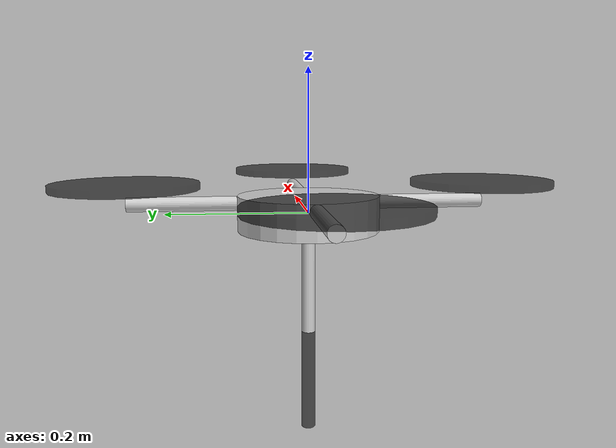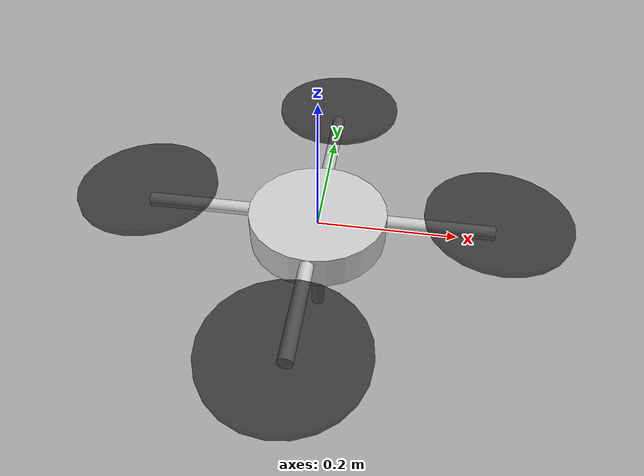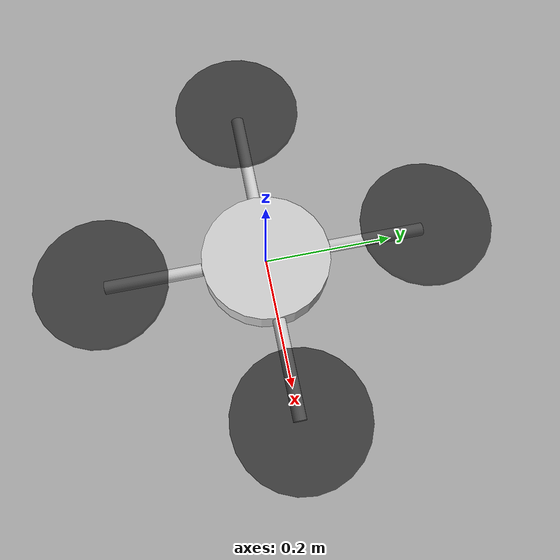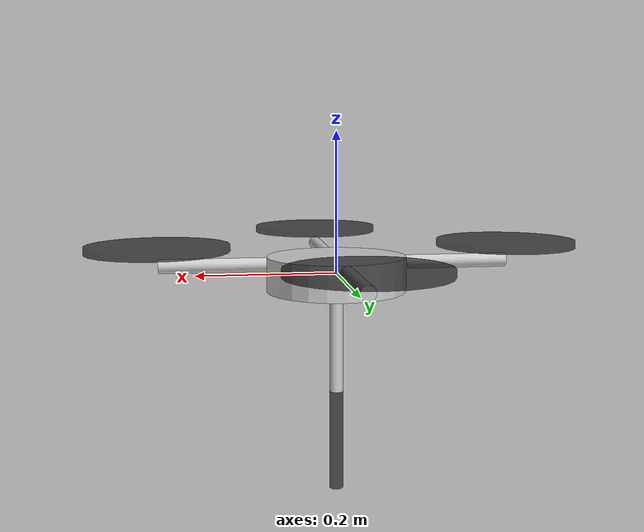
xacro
<?xml version="1.0"?>
<robot xmlns:xacro="http://wiki.ros.org/xacro" name="drone">

  <!-- properties -->
  <xacro:property name="frame_radius" value="0.1"/>
  <xacro:property name="frame_height" value="0.05"/>
  <xacro:property name="frame_mass" value="0.88"/>
  <xacro:property name="arm_radius" value="0.01"/>
  <xacro:property name="arm_length" value="0.15"/>
  <xacro:property name="arm_mass" value="0.01"/>
  <xacro:property name="propeller_radius" value="0.1"/>
  <xacro:property name="propeller_height" value="0.01"/>
  <xacro:property name="propeller_height_offset" value="0.025"/>
  <xacro:property name="propeller_mass" value="0.01"/>

  <xacro:macro name="cylinder_inertial" params="radius height mass *origin">
   <inertial>
      <mass value="${mass}"/>
      <xacro:insert_block name="origin"/>
      <inertia
        ixx="${0.0833333 * mass * (3 * radius * radius + height * height)}"
        ixy="0.0"
        ixz="0.0"
        iyy="${0.0833333 * mass * (3 * radius * radius + height * height)}"
        iyz="0.0"
        izz="${0.5 * mass * radius * radius}"
      />
   </inertial>
  </xacro:macro>

 <xacro:macro name="arm" params="i">
   <link name="arm${i}">
     <visual>
        <origin xyz="${cos((i-1)*pi/2)*(frame_radius+arm_length/2)} ${sin((i-1)*pi/2)*(frame_radius+arm_length/2)} ${frame_height/2-arm_radius}" rpy="0 ${pi/2} ${(i-1)*pi/2}"/>
       <geometry>
          <cylinder radius="${arm_radius}" length="${arm_length}"/>
       </geometry>
        <material name="arm_material"/>
      </visual>
      <collision>
        <origin xyz="${cos((i-1)*pi/2)*(frame_radius+arm_length/2)} ${sin((i-1)*pi/2)*(frame_radius+arm_length/2)} ${frame_height/2-arm_radius}" rpy="0 ${pi/2} ${(i-1)*pi/2}"/>
        <geometry>
          <cylinder radius="${arm_radius}" length="${arm_length}"/>
        </geometry>
     </collision>
      <xacro:cylinder_inertial radius="${arm_radius}" height="${arm_length}" mass="${arm_mass}">
        <origin xyz="${cos((i-1)*pi/2)*(frame_radius+arm_length/2)} ${sin((i-1)*pi/2)*(frame_radius+arm_length/2)} ${frame_height/2-arm_radius}" rpy="0 ${pi/2} ${(i-1)*pi/2}"/>
      </xacro:cylinder_inertial>
    </link>

    <joint name="frame_arm${i}" type="fixed">
      <parent link="frame"/>
      <child link="arm${i}"/>
    </joint>

    <gazebo reference="arm${i}">
      <material>Gazebo/Grey</material>
    </gazebo>
  </xacro:macro>

  <xacro:macro name="propeller" params="i mat">
    <link name="propeller${i}">
      <visual>
        <origin xyz="0 0 0" rpy="0 0 0"/>
        <geometry>
          <cylinder radius="${propeller_radius}" length="${propeller_height}"/>
        </geometry>
        <material name="propeller_material"/>
      </visual>
      <collision>
        <origin xyz="0 0 0" rpy="0 0 0"/>
        <geometry>
          <cylinder radius="${propeller_radius}" length="${propeller_height}"/>
        </geometry>
      </collision>
      <xacro:cylinder_inertial radius="${propeller_radius}" height="${propeller_height}" mass="${propeller_mass}">
        <origin xyz="0 0 0" rpy="0 0 0"/>
      </xacro:cylinder_inertial>
    </link>

    <joint name="arm${i}_propeller${i}" type="revolute">
      <parent link="arm${i}"/>
      <child link="propeller${i}"/>
      <origin xyz="${cos((i-1)*pi/2)*(frame_radius+arm_length)} ${sin((i-1)*pi/2)*(frame_radius+arm_length)} ${frame_height/2-arm_radius+propeller_height_offset}" rpy="0 0 0"/>
      <axis xyz="0 0 1"/>
      <limit lower="0" upper="0" effort="0" velocity="3"/>
    </joint>

    <gazebo reference="propeller${i}">
      <material>${mat}</material>
    </gazebo>
  </xacro:macro>

  <material name="frame_material">
    <color rgba="1 0.2 0.2 1"/>
  </material>

  <material name="arm_material">
    <color rgba="0.8 0.8 0.8 1"/>
  </material>

  <material name="propeller_material">
    <color rgba="0 0 0 0.6"/>
  </material>

  <link name="frame">
    <visual>
      <origin xyz="0 0 0" rpy="0 0 0"/>
      <geometry>
        <cylinder radius="${frame_radius}" length="${frame_height}"/>
      </geometry>
      <material name="frame_material">
        <color rgba="0.8 0.8 0.8 1.0"/>
      </material>
    </visual>
    <collision>
      <origin xyz="0 0 0" rpy="0 0 0"/>
      <geometry>
        <cylinder radius="${frame_radius}" length="${frame_height}"/>
      </geometry>
    </collision>
    <xacro:cylinder_inertial radius="${frame_radius}" height="${frame_height}" mass="${frame_mass}">
      <origin xyz="0 0 0" rpy="0 0 0" />
    </xacro:cylinder_inertial>
  </link>

  <gazebo reference="frame">
    <material>Gazebo/Orange</material>
  </gazebo>

  <xacro:arm i="1"/>
  <xacro:arm i="2"/>
  <xacro:arm i="3"/>
  <xacro:arm i="4"/>

  <xacro:propeller i="1" mat="Gazebo/RedTransparent"/>
  <xacro:propeller i="2" mat="Gazebo/BlackTransparent"/>
  <xacro:propeller i="3" mat="Gazebo/BlueTransparent"/>
  <xacro:propeller i="4" mat="Gazebo/BlueTransparent"/>

 <xacro:macro name="manipulator_link1">
	<link name="link1">
		<visual>
		  <origin xyz="0 0 ${-(arm_length/2)}" rpy="0 0 0"/>
		  <geometry>
			<cylinder radius="${arm_radius}" length="${arm_length}"/>
		  </geometry>
		  <material name="arm_material"/>
		</visual>
		<collision>
		  <origin xyz="0 0 ${-(arm_length/2)}" rpy="0 0 0"/>
		  <geometry>
			<cylinder radius="${arm_radius}" length="${arm_length}"/>
		  </geometry>
		</collision>
		<xacro:cylinder_inertial radius="${arm_radius}" height="${arm_length}" mass="${propeller_mass}">
        <origin xyz="0 0 ${-(arm_length/2)}" rpy="0 0 0"/>
      </xacro:cylinder_inertial>
	  </link>
	<joint name="joint1" type="revolute">
		<parent link="frame" />
		<child link="link1" />
		<limit effort="30" velocity="1.0" lower="-1.570795" upper="1.570795" />
		<origin xyz="0 0 ${-(frame_height/2)}" rpy="0 0 0" />
		<axis xyz="1 0 0" />
	  </joint>

	<gazebo reference="link1">
		  <material>Gazebo/Grey</material>
		</gazebo>

	</xacro:macro>

 <xacro:macro name="manipulator_link2">
	<link name="link2">
		<visual>
		  <origin xyz="0 0 ${-(arm_length/2)}" rpy="0 0 0"/>
		  <geometry>
			<cylinder radius="${arm_radius}" length="${arm_length}"/>
		  </geometry>
		  <material name="propeller_material"/>
		</visual>
		<collision>
		  <origin xyz="0 0 ${-(arm_length/2)}" rpy="0 0 0"/>
		  <geometry>
			<cylinder radius="${arm_radius}" length="${arm_length}"/>
		  </geometry>
		</collision>
		<xacro:cylinder_inertial radius="${arm_radius}" height="${arm_length}" mass="${propeller_mass}">
        <origin xyz="0 0 ${-(arm_length/2)}" rpy="0 0 0"/>
      </xacro:cylinder_inertial>
	  </link>
	<joint name="joint2" type="revolute">
		<parent link="link1" />
		<child link="link2" />
		<limit effort="30" velocity="1.0" lower="-1.570795" upper="1.570795" />
		<origin xyz="0 0 ${-(arm_length)}" rpy="0 0 0" />
		<axis xyz="1 0 0" />
	  </joint>

	<gazebo reference="link2">
		  <material>Gazebo/Pink</material>
		</gazebo>

	</xacro:macro>

	 <xacro:macro name="manipulator_tool">
		 <link name="tool"></link>
		<joint name="ee" type="fixed">
			<parent link="link2" />
			<child link="tool" />
			<limit effort="30" velocity="1.0" lower="-6.28318" upper="6.28318" />
			<origin xyz="0 0 1" rpy="0 0 0" />
			<axis xyz="1 0 0" />
		  </joint>

		<gazebo reference="tool">
			  <material>Gazebo/Pink</material>
			</gazebo>

	</xacro:macro>

	<xacro:manipulator_link1/>
	<xacro:manipulator_link2/>
	<xacro:manipulator_tool/>
	<gazebo>
		<plugin name="drone_plugin" filename="libdrone_plugin.so">
		  <updateRate>100</updateRate>
		  <publishTf>true</publishTf>
		  <rotorThrustCoeff>0.00025</rotorThrustCoeff>
		  <rotorTorqueCoeff>0.0000074</rotorTorqueCoeff>
		</plugin>
	  </gazebo>
</robot>
